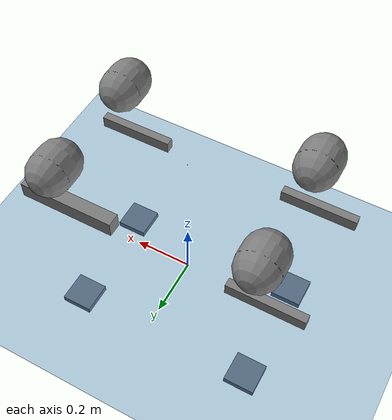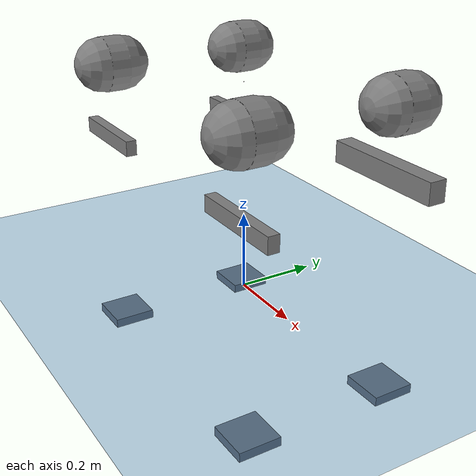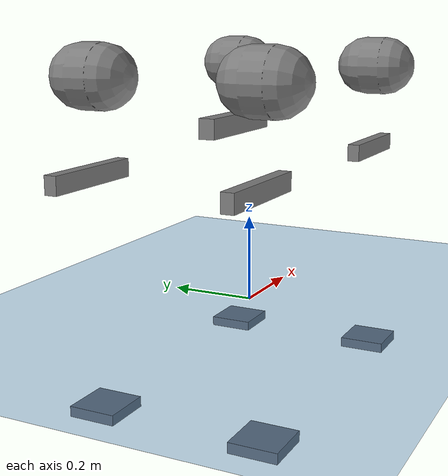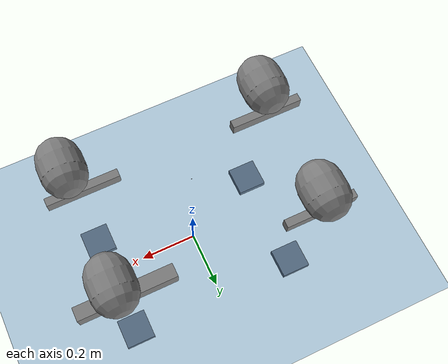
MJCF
<mujoco model="MuJoCo Model">
  <compiler angle="radian"/>

  <option gravity="0 0 -9.81" integrator="implicitfast">
    <flag multiccd="disable"/>
  </option>

  <worldbody>
    <geom name="ground_plane_0" size="5 5 5" type="plane" contype="2" conaffinity="2147483645" friction="2 0.005 0.0001" solref="0.02" rgba="0 0.3 0.6 1"/>
    <body name="body_0" pos="0 0 0.54">
      <inertial pos="0 0 0" quat="-0.00434736 0.708322 -0.0038071 0.705866" mass="41.4371" diaginertia="1.18253 1.06178 0.274649"/>
      <joint name="joint_1" type="free"/>
      <geom name="shape_1_1" size="0.001" contype="4" conaffinity="2147483643" friction="2 0.005 0.0001" solref="0.02"/>
      <body name="body_1" pos="0.3285 0.072 0">
        <inertial pos="0 0 0" quat="0.51159 0.511095 0.488163 0.488625" mass="2.9464" diaginertia="0.00487759 0.0037087 0.00331551"/>
        <joint name="joint_2" pos="0 0 0" axis="1 0 0" solreflimit="-10000 -100" limited="true" range="-0.87 0.87" actuatorfrclimited="true" actuatorfrcrange="-200 200"/>
        <geom name="shape_2_2" size="0.07 0.025" pos="0 0.12 0" quat="0.707107 -0.707107 0 0" type="capsule" contype="4" conaffinity="2147483643" friction="2 0.005 0.0001" solref="0.02"/>
        <body name="body_2" pos="0 0.11973 0">
          <inertial pos="0 0 0" quat="0.898991 0.0831319 -0.00247095 0.429998" mass="4.8094" diaginertia="0.0629358 0.0622943 0.00666756"/>
          <joint name="joint_6" pos="0 0 0" axis="0 1 0" solreflimit="-10000 -100" limited="true" range="-0.94 3.13159" actuatorfrclimited="true" actuatorfrcrange="-200 200"/>
          <geom name="shape_3_3" size="0.16 0.02225 0.027" pos="-0.025 0 -0.16" type="box" contype="4" conaffinity="2147483643" friction="2 0.005 0.0001" solref="0.02"/>
          <body name="body_3" pos="0 -8.6984e-05 -0.35">
            <inertial pos="0 0 0" quat="0.706813 -0.0203887 -0.0203887 0.706813" mass="0.53" diaginertia="0.011534 0.0114671 0.000293873"/>
            <joint name="joint_10" pos="0 0 0" axis="0 1 0" solreflimit="-10000 -100" limited="true" range="-2.82 -0.43" actuatorfrclimited="true" actuatorfrcrange="-320 320"/>
            <geom name="shape_4_4" type="box" size="0.0549 0.0549 0.0119" pos="0 0 -0.3701" contype="4" conaffinity="2147483643" friction="2 0.005 0.0001" solref="0.02"/>
          </body>
        </body>
      </body>
      <body name="body_4" pos="0.3285 -0.072 0">
        <inertial pos="0 0 0" quat="0.476259 0.475828 0.519403 0.526294" mass="2.9464" diaginertia="0.00469091 0.0034208 0.00262499"/>
        <joint name="joint_3" pos="0 0 0" axis="1 0 0" solreflimit="-10000 -100" limited="true" range="-0.87 0.87" actuatorfrclimited="true" actuatorfrcrange="-200 200"/>
        <geom name="shape_5_5" size="0.07 0.025" pos="0 -0.12 0" quat="0.707107 -0.707107 0 0" type="capsule" contype="4" conaffinity="2147483643" friction="2 0.005 0.0001" solref="0.02"/>
        <body name="body_5" pos="0 -0.11973 0">
          <inertial pos="0 0 0" quat="0.430062 -0.0024769 0.083131 0.898961" mass="4.8094" diaginertia="0.062936 0.0622945 0.00666762"/>
          <joint name="joint_7" pos="0 0 0" axis="0 1 0" solreflimit="-10000 -100" limited="true" range="-0.94 3.13159" actuatorfrclimited="true" actuatorfrcrange="-200 200"/>
          <geom name="shape_6_6" size="0.125 0.014 0.02" pos="-0.03 0 -0.2" type="box" contype="4" conaffinity="2147483643" friction="2 0.005 0.0001" solref="0.02"/>
          <body name="body_6" pos="0 8.6986e-05 -0.35">
            <inertial pos="0 0 0" quat="0.706813 -0.0203887 -0.0203887 0.706813" mass="0.53" diaginertia="0.011534 0.0114671 0.000293873"/>
            <joint name="joint_11" pos="0 0 0" axis="0 1 0" solreflimit="-10000 -100" limited="true" range="-2.82 -0.43" actuatorfrclimited="true" actuatorfrcrange="-320 320"/>
            <geom name="shape_7_7" type="box" size="0.0549 0.0549 0.0119" pos="0 0 -0.3701" contype="4" conaffinity="2147483643" friction="2 0.005 0.0001" solref="0.02"/>
          </body>
        </body>
      </body>
      <body name="body_7" pos="-0.3285 0.072 0">
        <inertial pos="0 0 0" quat="0.475828 0.476259 0.526294 0.519403" mass="2.9464" diaginertia="0.00469091 0.0034208 0.00262499"/>
        <joint name="joint_4" pos="0 0 0" axis="1 0 0" solreflimit="-10000 -100" limited="true" range="-0.87 0.87" actuatorfrclimited="true" actuatorfrcrange="-200 200"/>
        <geom name="shape_8_8" size="0.07 0.025" pos="0 0.12 0" quat="0.707107 -0.707107 0 0" type="capsule" contype="4" conaffinity="2147483643" friction="2 0.005 0.0001" solref="0.02"/>
        <body name="body_8" pos="0 0.11973 0">
          <inertial pos="0 0 0" quat="0.898961 0.083131 -0.0024769 0.430062" mass="4.8094" diaginertia="0.062936 0.0622945 0.00666762"/>
          <joint name="joint_8" pos="0 0 0" axis="0 1 0" solreflimit="-10000 -100" limited="true" range="-0.94 3.13159" actuatorfrclimited="true" actuatorfrcrange="-200 200"/>
          <geom name="shape_9_9" size="0.125 0.014 0.02" pos="-0.03 0 -0.2" type="box" contype="4" conaffinity="2147483643" friction="2 0.005 0.0001" solref="0.02"/>
          <body name="body_9" pos="0 -8.6984e-05 -0.35">
            <inertial pos="0 0 0" quat="0.706813 -0.0203887 -0.0203887 0.706813" mass="0.53" diaginertia="0.011534 0.0114671 0.000293873"/>
            <joint name="joint_12" pos="0 0 0" axis="0 1 0" solreflimit="-10000 -100" limited="true" range="-2.82 -0.43" actuatorfrclimited="true" actuatorfrcrange="-320 320"/>
            <geom name="shape_10_10" type="box" size="0.0549 0.0549 0.0119" pos="0 0 -0.3701" contype="4" conaffinity="2147483643" friction="2 0.005 0.0001" solref="0.02"/>
          </body>
        </body>
      </body>
      <body name="body_10" pos="-0.3285 -0.072 0">
        <inertial pos="0 0 0" quat="0.511095 0.51159 0.488625 0.488163" mass="2.9464" diaginertia="0.00487759 0.0037087 0.00331551"/>
        <joint name="joint_5" pos="0 0 0" axis="1 0 0" solreflimit="-10000 -100" limited="true" range="-0.87 0.87" actuatorfrclimited="true" actuatorfrcrange="-200 200"/>
        <geom name="shape_11_11" size="0.07 0.025" pos="0 -0.12 0" quat="0.707107 -0.707107 0 0" type="capsule" contype="4" conaffinity="2147483643" friction="2 0.005 0.0001" solref="0.02"/>
        <body name="body_11" pos="0 -0.11973 0">
          <inertial pos="0 0 0" quat="0.429998 -0.00247095 0.0831319 0.898991" mass="4.8094" diaginertia="0.0629358 0.0622943 0.00666756"/>
          <joint name="joint_9" pos="0 0 0" axis="0 1 0" solreflimit="-10000 -100" limited="true" range="-0.94 3.13159" actuatorfrclimited="true" actuatorfrcrange="-200 200"/>
          <geom name="shape_12_12" size="0.125 0.014 0.02" pos="-0.03 0 -0.2" type="box" contype="4" conaffinity="2147483643" friction="2 0.005 0.0001" solref="0.02"/>
          <body name="body_12" pos="0 8.6986e-05 -0.35">
            <inertial pos="0 0 0" quat="0.706813 -0.0203887 -0.0203887 0.706813" mass="0.53" diaginertia="0.011534 0.0114671 0.000293873"/>
            <joint name="joint_13" pos="0 0 0" axis="0 1 0" solreflimit="-10000 -100" limited="true" range="-2.82 -0.43" actuatorfrclimited="true" actuatorfrcrange="-320 320"/>
            <geom name="shape_13_13" type="box" size="0.0549 0.0549 0.0119" pos="0 0 -0.3701" contype="4" conaffinity="2147483643" friction="2 0.005 0.0001" solref="0.02"/>
          </body>
        </body>
      </body>
    </body>
  </worldbody>

  <contact>
    <exclude body1="body_0" body2="body_1"/>
    <exclude body1="body_0" body2="body_2"/>
    <exclude body1="body_0" body2="body_3"/>
    <exclude body1="body_0" body2="body_4"/>
    <exclude body1="body_0" body2="body_5"/>
    <exclude body1="body_0" body2="body_6"/>
    <exclude body1="body_0" body2="body_7"/>
    <exclude body1="body_0" body2="body_8"/>
    <exclude body1="body_0" body2="body_9"/>
    <exclude body1="body_0" body2="body_10"/>
    <exclude body1="body_0" body2="body_11"/>
    <exclude body1="body_0" body2="body_12"/>
    <exclude body1="body_1" body2="body_2"/>
    <exclude body1="body_1" body2="body_3"/>
    <exclude body1="body_1" body2="body_4"/>
    <exclude body1="body_1" body2="body_5"/>
    <exclude body1="body_1" body2="body_6"/>
    <exclude body1="body_1" body2="body_7"/>
    <exclude body1="body_1" body2="body_8"/>
    <exclude body1="body_1" body2="body_9"/>
    <exclude body1="body_1" body2="body_10"/>
    <exclude body1="body_1" body2="body_11"/>
    <exclude body1="body_1" body2="body_12"/>
    <exclude body1="body_2" body2="body_3"/>
    <exclude body1="body_2" body2="body_4"/>
    <exclude body1="body_2" body2="body_5"/>
    <exclude body1="body_2" body2="body_6"/>
    <exclude body1="body_2" body2="body_7"/>
    <exclude body1="body_2" body2="body_8"/>
    <exclude body1="body_2" body2="body_9"/>
    <exclude body1="body_2" body2="body_10"/>
    <exclude body1="body_2" body2="body_11"/>
    <exclude body1="body_2" body2="body_12"/>
    <exclude body1="body_3" body2="body_4"/>
    <exclude body1="body_3" body2="body_5"/>
    <exclude body1="body_3" body2="body_6"/>
    <exclude body1="body_3" body2="body_7"/>
    <exclude body1="body_3" body2="body_8"/>
    <exclude body1="body_3" body2="body_9"/>
    <exclude body1="body_3" body2="body_10"/>
    <exclude body1="body_3" body2="body_11"/>
    <exclude body1="body_3" body2="body_12"/>
    <exclude body1="body_4" body2="body_5"/>
    <exclude body1="body_4" body2="body_6"/>
    <exclude body1="body_4" body2="body_7"/>
    <exclude body1="body_4" body2="body_8"/>
    <exclude body1="body_4" body2="body_9"/>
    <exclude body1="body_4" body2="body_10"/>
    <exclude body1="body_4" body2="body_11"/>
    <exclude body1="body_4" body2="body_12"/>
    <exclude body1="body_5" body2="body_6"/>
    <exclude body1="body_5" body2="body_7"/>
    <exclude body1="body_5" body2="body_8"/>
    <exclude body1="body_5" body2="body_9"/>
    <exclude body1="body_5" body2="body_10"/>
    <exclude body1="body_5" body2="body_11"/>
    <exclude body1="body_5" body2="body_12"/>
    <exclude body1="body_6" body2="body_7"/>
    <exclude body1="body_6" body2="body_8"/>
    <exclude body1="body_6" body2="body_9"/>
    <exclude body1="body_6" body2="body_10"/>
    <exclude body1="body_6" body2="body_11"/>
    <exclude body1="body_6" body2="body_12"/>
    <exclude body1="body_7" body2="body_8"/>
    <exclude body1="body_7" body2="body_9"/>
    <exclude body1="body_7" body2="body_10"/>
    <exclude body1="body_7" body2="body_11"/>
    <exclude body1="body_7" body2="body_12"/>
    <exclude body1="body_8" body2="body_9"/>
    <exclude body1="body_8" body2="body_10"/>
    <exclude body1="body_8" body2="body_11"/>
    <exclude body1="body_8" body2="body_12"/>
    <exclude body1="body_9" body2="body_10"/>
    <exclude body1="body_9" body2="body_11"/>
    <exclude body1="body_9" body2="body_12"/>
    <exclude body1="body_10" body2="body_11"/>
    <exclude body1="body_10" body2="body_12"/>
    <exclude body1="body_11" body2="body_12"/>
  </contact>

  <actuator>
    <general joint="joint_2" biastype="affine" gainprm="1400" biasprm="0 -1400"/>
    <general joint="joint_2" biastype="affine" gainprm="35" biasprm="0 0 -35"/>
    <general joint="joint_6" biastype="affine" gainprm="1400" biasprm="0 -1400"/>
    <general joint="joint_6" biastype="affine" gainprm="35" biasprm="0 0 -35"/>
    <general joint="joint_10" biastype="affine" gainprm="1400" biasprm="0 -1400"/>
    <general joint="joint_10" biastype="affine" gainprm="35" biasprm="0 0 -35"/>
    <general joint="joint_3" biastype="affine" gainprm="1400" biasprm="0 -1400"/>
    <general joint="joint_3" biastype="affine" gainprm="35" biasprm="0 0 -35"/>
    <general joint="joint_7" biastype="affine" gainprm="1400" biasprm="0 -1400"/>
    <general joint="joint_7" biastype="affine" gainprm="35" biasprm="0 0 -35"/>
    <general joint="joint_11" biastype="affine" gainprm="1400" biasprm="0 -1400"/>
    <general joint="joint_11" biastype="affine" gainprm="35" biasprm="0 0 -35"/>
    <general joint="joint_4" biastype="affine" gainprm="1400" biasprm="0 -1400"/>
    <general joint="joint_4" biastype="affine" gainprm="35" biasprm="0 0 -35"/>
    <general joint="joint_8" biastype="affine" gainprm="1400" biasprm="0 -1400"/>
    <general joint="joint_8" biastype="affine" gainprm="35" biasprm="0 0 -35"/>
    <general joint="joint_12" biastype="affine" gainprm="1400" biasprm="0 -1400"/>
    <general joint="joint_12" biastype="affine" gainprm="35" biasprm="0 0 -35"/>
    <general joint="joint_5" biastype="affine" gainprm="1400" biasprm="0 -1400"/>
    <general joint="joint_5" biastype="affine" gainprm="35" biasprm="0 0 -35"/>
    <general joint="joint_9" biastype="affine" gainprm="1400" biasprm="0 -1400"/>
    <general joint="joint_9" biastype="affine" gainprm="35" biasprm="0 0 -35"/>
    <general joint="joint_13" biastype="affine" gainprm="1400" biasprm="0 -1400"/>
    <general joint="joint_13" biastype="affine" gainprm="35" biasprm="0 0 -35"/>
  </actuator>
</mujoco>
